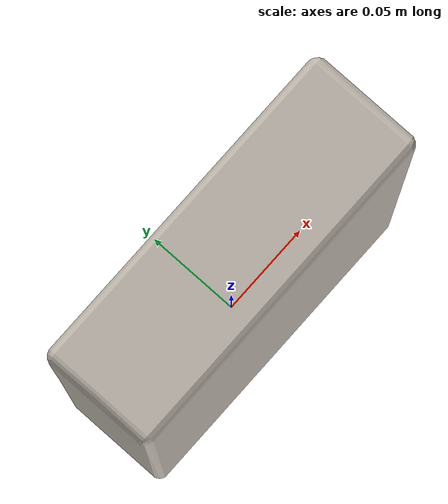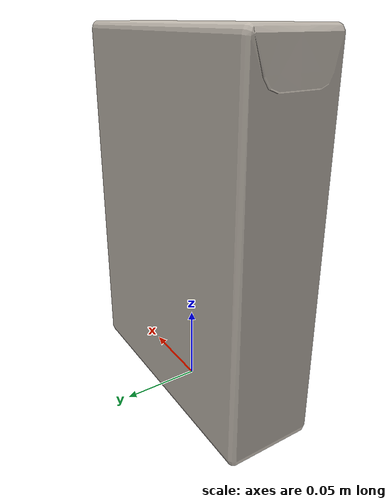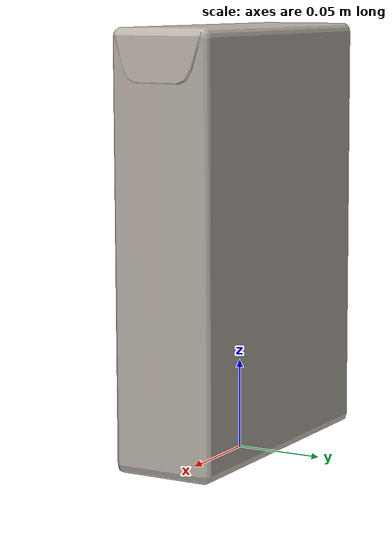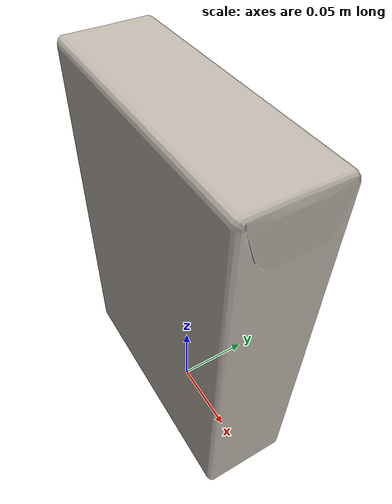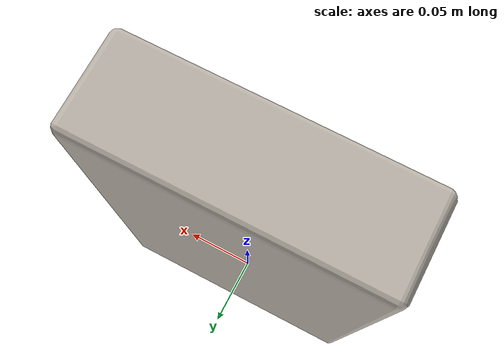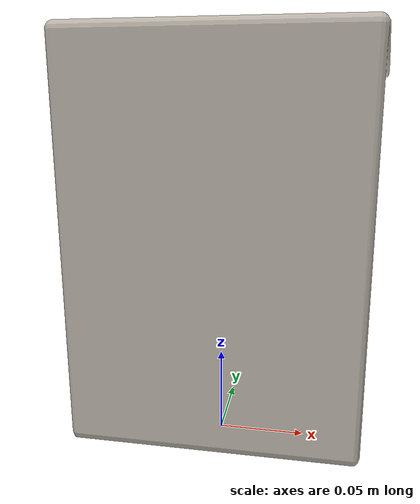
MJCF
<?xml version="1.0" encoding="utf-8"?>
<mujoco model="cereal">
  <compiler angle="radian" meshdir="assets" texturedir="assets" autolimits="true"/>
  <asset>
    <mesh file="cereal.obj"/>
    <texture type="2d" name="cereal" file="cereal.png"/>
    <material name="cereal" specular="0.2" shininess="0.2" texture="cereal"/>
  </asset>
  <default>
    <default class="cereal">
      <geom type="mesh" mass="0.5" solimp="0.95 0.98 0.001" solref="0.004 1"/>
    </default>
  </default>
  <worldbody>
    <body name="cereal" childclass="cereal">
      <geom name="cereal" mesh="cereal" material="cereal" euler="1.5708 0 0"/>
    </body>
  </worldbody>
</mujoco>
